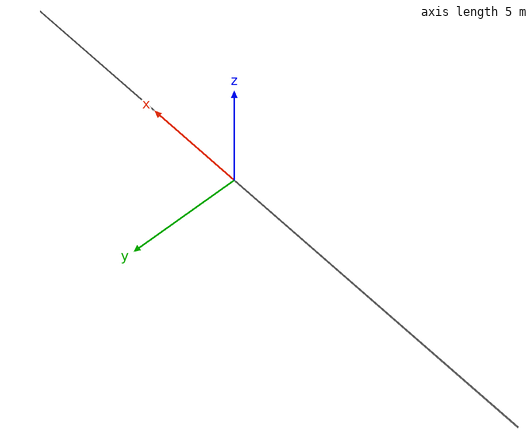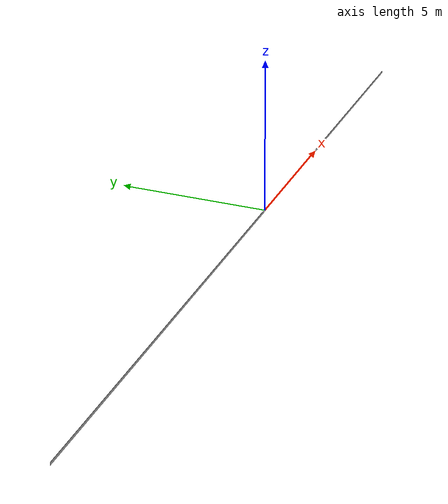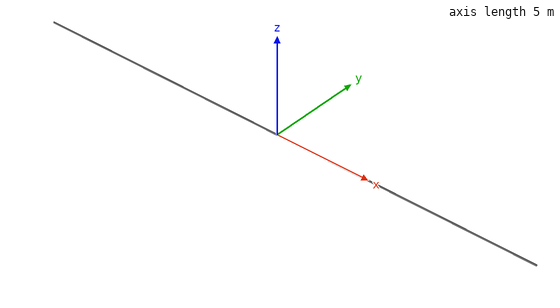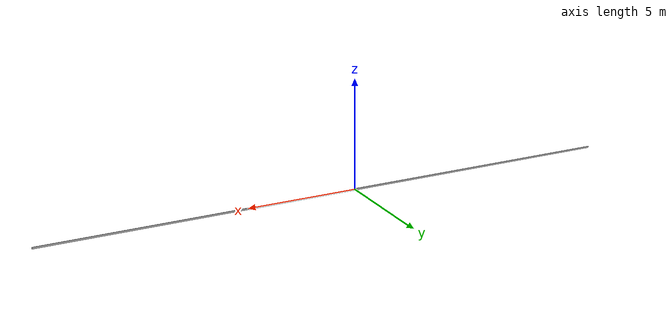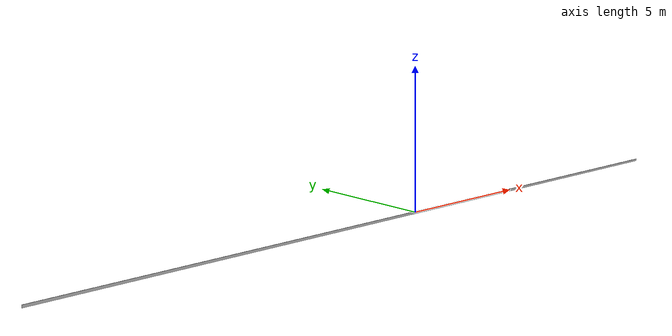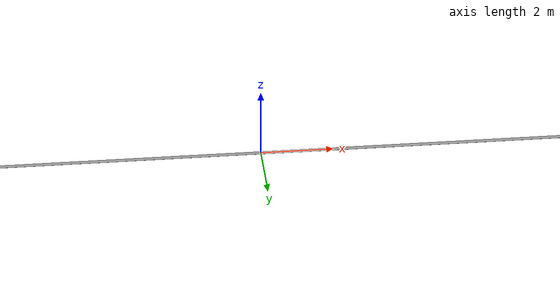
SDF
<?xml version="1.0" ?>
<sdf version="1.5">
  <model name='tray_part2'>
    <link name='link_0'>
    <pose frame=''>0 0 0 1.571 -0 0</pose>
      <visual name='visual'>
        <geometry>
          <box>
            <size>27.09 0.085 0.005</size>
          </box>
        </geometry>
        <material>
          <lighting>1</lighting>
          <script>
            <uri>file://media/materials/scripts/gazebo.material</uri>
            <name>Gazebo/Grey</name>
          </script>
          <shader type='vertex'>
            <normal_map>__default__</normal_map>
          </shader>
          <ambient>0.7 0.7 0.7 1</ambient>
          <diffuse>0.3 0.3 0.3 1</diffuse>
          <specular>0.01 0.01 0.01 1</specular>
          <emissive>0 0 0 1</emissive>
        </material>
        <cast_shadows>1</cast_shadows>
      </visual>
      <collision name='collision'>
        <geometry>
          <box>
            <size>27.09 0.085 0.005</size>
          </box>
        </geometry>
      </collision>
    </link>
    <static>1</static>
    <allow_auto_disable>1</allow_auto_disable>
  </model>
</sdf>
